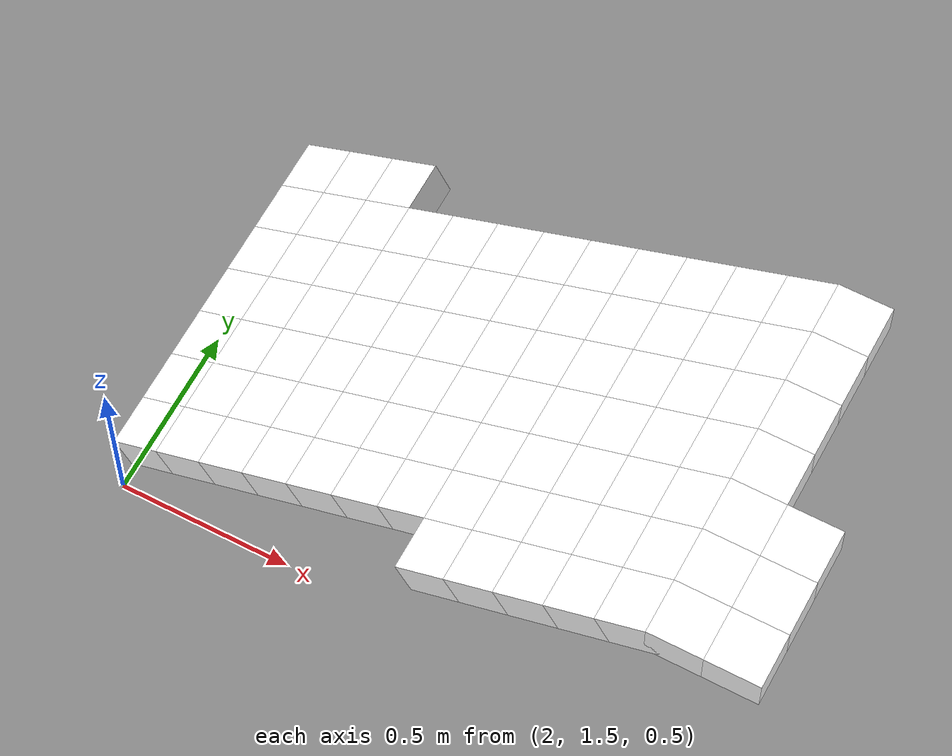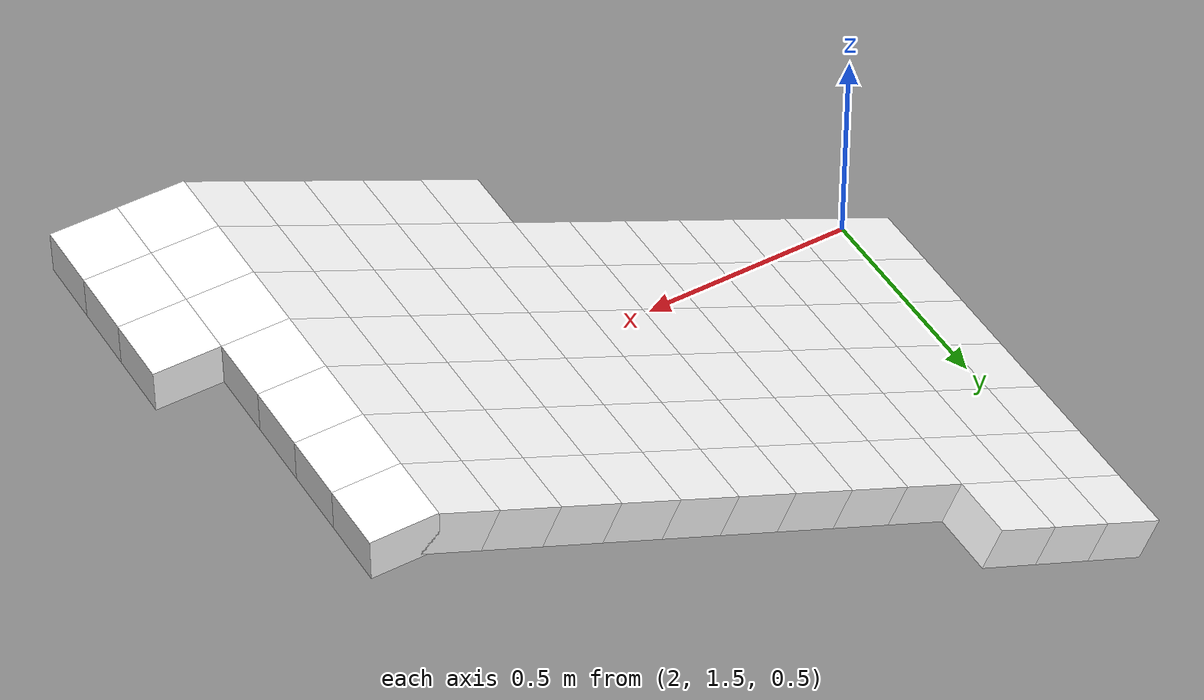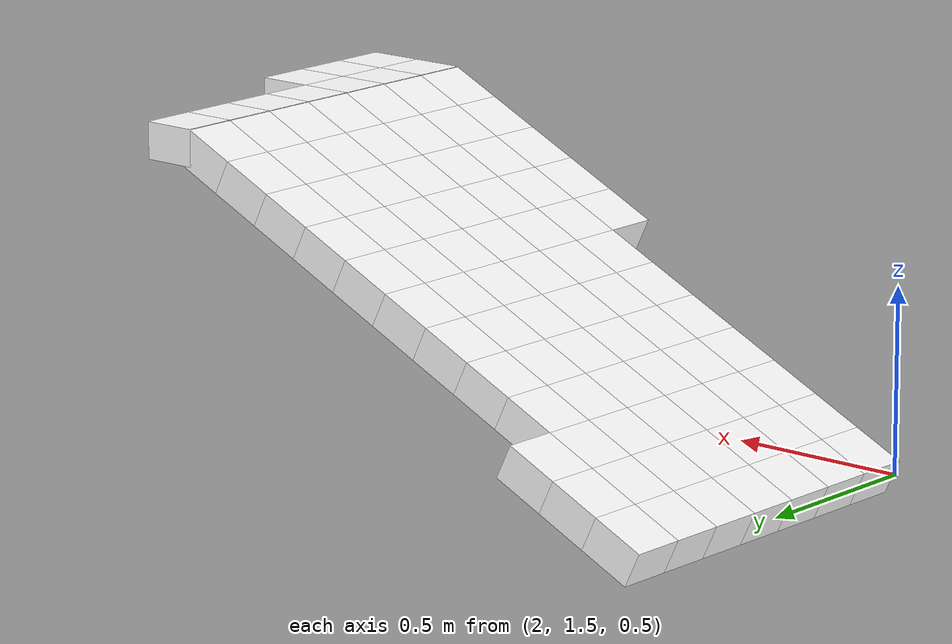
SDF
<sdf version="1.7">
 <world name="default">
  <include><uri>model://sun</uri></include>
  <model name="static_environment">
   <static>true</static>
   <link name="region_535">
    <pose>2.967153307946564 1.5 1.011209308380573 0.0 -0.45 0.0</pose>
    <collision name="region_535_collision">
     <geometry><box><size>0.15 0.15 0.1</size></box></geometry>
     <surface><friction><ode><mu>1.0</mu><mu2>1.0</mu2></ode></friction></surface>
    </collision>
    <visual name="region_535_visual">
     <geometry><box><size>0.15 0.15 0.1</size></box></geometry>
     <material><ambient>1.0 1.0 1.0 1.0</ambient><diffuse>1.0 1.0 1.0 1.0</diffuse></material>
    </visual>
   </link>
   <link name="region_536">
    <pose>3.102220373299466 1.5 1.0764541384972577 0.0 -0.45 0.0</pose>
    <collision name="region_536_collision">
     <geometry><box><size>0.15 0.15 0.1</size></box></geometry>
     <surface><friction><ode><mu>1.0</mu><mu2>1.0</mu2></ode></friction></surface>
    </collision>
    <visual name="region_536_visual">
     <geometry><box><size>0.15 0.15 0.1</size></box></geometry>
     <material><ambient>1.0 1.0 1.0 1.0</ambient><diffuse>1.0 1.0 1.0 1.0</diffuse></material>
    </visual>
   </link>
   <link name="region_537">
    <pose>3.237287438652367 1.5 1.1416989686139423 0.0 -0.45 0.0</pose>
    <collision name="region_537_collision">
     <geometry><box><size>0.15 0.15 0.1</size></box></geometry>
     <surface><friction><ode><mu>1.0</mu><mu2>1.0</mu2></ode></friction></surface>
    </collision>
    <visual name="region_537_visual">
     <geometry><box><size>0.15 0.15 0.1</size></box></geometry>
     <material><ambient>1.0 1.0 1.0 1.0</ambient><diffuse>1.0 1.0 1.0 1.0</diffuse></material>
    </visual>
   </link>
   <link name="region_538">
    <pose>3.372354504005269 1.5 1.2069437987306273 0.0 -0.45 0.0</pose>
    <collision name="region_538_collision">
     <geometry><box><size>0.15 0.15 0.1</size></box></geometry>
     <surface><friction><ode><mu>1.0</mu><mu2>1.0</mu2></ode></friction></surface>
    </collision>
    <visual name="region_538_visual">
     <geometry><box><size>0.15 0.15 0.1</size></box></geometry>
     <material><ambient>1.0 1.0 1.0 1.0</ambient><diffuse>1.0 1.0 1.0 1.0</diffuse></material>
    </visual>
   </link>
   <link name="region_539">
    <pose>3.507421569358171 1.5 1.2721886288473119 0.0 -0.45 0.0</pose>
    <collision name="region_539_collision">
     <geometry><box><size>0.15 0.15 0.1</size></box></geometry>
     <surface><friction><ode><mu>1.0</mu><mu2>1.0</mu2></ode></friction></surface>
    </collision>
    <visual name="region_539_visual">
     <geometry><box><size>0.15 0.15 0.1</size></box></geometry>
     <material><ambient>1.0 1.0 1.0 1.0</ambient><diffuse>1.0 1.0 1.0 1.0</diffuse></material>
    </visual>
   </link>
   <link name="region_548">
    <pose>2.0216838504762515 1.65 0.5544954975637805 0.0 -0.45 0.0</pose>
    <collision name="region_548_collision">
     <geometry><box><size>0.15 0.15 0.1</size></box></geometry>
     <surface><friction><ode><mu>1.0</mu><mu2>1.0</mu2></ode></friction></surface>
    </collision>
    <visual name="region_548_visual">
     <geometry><box><size>0.15 0.15 0.1</size></box></geometry>
     <material><ambient>1.0 1.0 1.0 1.0</ambient><diffuse>1.0 1.0 1.0 1.0</diffuse></material>
    </visual>
   </link>
   <link name="region_549">
    <pose>2.1567509158291527 1.65 0.619740327680465 0.0 -0.45 0.0</pose>
    <collision name="region_549_collision">
     <geometry><box><size>0.15 0.15 0.1</size></box></geometry>
     <surface><friction><ode><mu>1.0</mu><mu2>1.0</mu2></ode></friction></surface>
    </collision>
    <visual name="region_549_visual">
     <geometry><box><size>0.15 0.15 0.1</size></box></geometry>
     <material><ambient>1.0 1.0 1.0 1.0</ambient><diffuse>1.0 1.0 1.0 1.0</diffuse></material>
    </visual>
   </link>
   <link name="region_550">
    <pose>2.2918179811820547 1.65 0.6849851577971496 0.0 -0.45 0.0</pose>
    <collision name="region_550_collision">
     <geometry><box><size>0.15 0.15 0.1</size></box></geometry>
     <surface><friction><ode><mu>1.0</mu><mu2>1.0</mu2></ode></friction></surface>
    </collision>
    <visual name="region_550_visual">
     <geometry><box><size>0.15 0.15 0.1</size></box></geometry>
     <material><ambient>1.0 1.0 1.0 1.0</ambient><diffuse>1.0 1.0 1.0 1.0</diffuse></material>
    </visual>
   </link>
   <link name="region_551">
    <pose>2.426885046534956 1.65 0.7502299879138344 0.0 -0.45 0.0</pose>
    <collision name="region_551_collision">
     <geometry><box><size>0.15 0.15 0.1</size></box></geometry>
     <surface><friction><ode><mu>1.0</mu><mu2>1.0</mu2></ode></friction></surface>
    </collision>
    <visual name="region_551_visual">
     <geometry><box><size>0.15 0.15 0.1</size></box></geometry>
     <material><ambient>1.0 1.0 1.0 1.0</ambient><diffuse>1.0 1.0 1.0 1.0</diffuse></material>
    </visual>
   </link>
   <link name="region_552">
    <pose>2.5619521118878588 1.65 0.815474818030519 0.0 -0.45 0.0</pose>
    <collision name="region_552_collision">
     <geometry><box><size>0.15 0.15 0.1</size></box></geometry>
     <surface><friction><ode><mu>1.0</mu><mu2>1.0</mu2></ode></friction></surface>
    </collision>
    <visual name="region_552_visual">
     <geometry><box><size>0.15 0.15 0.1</size></box></geometry>
     <material><ambient>1.0 1.0 1.0 1.0</ambient><diffuse>1.0 1.0 1.0 1.0</diffuse></material>
    </visual>
   </link>
   <link name="region_553">
    <pose>2.69701917724076 1.65 0.8807196481472036 0.0 -0.45 0.0</pose>
    <collision name="region_553_collision">
     <geometry><box><size>0.15 0.15 0.1</size></box></geometry>
     <surface><friction><ode><mu>1.0</mu><mu2>1.0</mu2></ode></friction></surface>
    </collision>
    <visual name="region_553_visual">
     <geometry><box><size>0.15 0.15 0.1</size></box></geometry>
     <material><ambient>1.0 1.0 1.0 1.0</ambient><diffuse>1.0 1.0 1.0 1.0</diffuse></material>
    </visual>
   </link>
   <link name="region_554">
    <pose>2.832086242593662 1.65 0.9459644782638886 0.0 -0.45 0.0</pose>
    <collision name="region_554_collision">
     <geometry><box><size>0.15 0.15 0.1</size></box></geometry>
     <surface><friction><ode><mu>1.0</mu><mu2>1.0</mu2></ode></friction></surface>
    </collision>
    <visual name="region_554_visual">
     <geometry><box><size>0.15 0.15 0.1</size></box></geometry>
     <material><ambient>1.0 1.0 1.0 1.0</ambient><diffuse>1.0 1.0 1.0 1.0</diffuse></material>
    </visual>
   </link>
   <link name="region_555">
    <pose>2.967153307946564 1.65 1.011209308380573 0.0 -0.45 0.0</pose>
    <collision name="region_555_collision">
     <geometry><box><size>0.15 0.15 0.1</size></box></geometry>
     <surface><friction><ode><mu>1.0</mu><mu2>1.0</mu2></ode></friction></surface>
    </collision>
    <visual name="region_555_visual">
     <geometry><box><size>0.15 0.15 0.1</size></box></geometry>
     <material><ambient>1.0 1.0 1.0 1.0</ambient><diffuse>1.0 1.0 1.0 1.0</diffuse></material>
    </visual>
   </link>
   <link name="region_556">
    <pose>3.102220373299466 1.65 1.0764541384972577 0.0 -0.45 0.0</pose>
    <collision name="region_556_collision">
     <geometry><box><size>0.15 0.15 0.1</size></box></geometry>
     <surface><friction><ode><mu>1.0</mu><mu2>1.0</mu2></ode></friction></surface>
    </collision>
    <visual name="region_556_visual">
     <geometry><box><size>0.15 0.15 0.1</size></box></geometry>
     <material><ambient>1.0 1.0 1.0 1.0</ambient><diffuse>1.0 1.0 1.0 1.0</diffuse></material>
    </visual>
   </link>
   <link name="region_557">
    <pose>3.237287438652367 1.65 1.1416989686139423 0.0 -0.45 0.0</pose>
    <collision name="region_557_collision">
     <geometry><box><size>0.15 0.15 0.1</size></box></geometry>
     <surface><friction><ode><mu>1.0</mu><mu2>1.0</mu2></ode></friction></surface>
    </collision>
    <visual name="region_557_visual">
     <geometry><box><size>0.15 0.15 0.1</size></box></geometry>
     <material><ambient>1.0 1.0 1.0 1.0</ambient><diffuse>1.0 1.0 1.0 1.0</diffuse></material>
    </visual>
   </link>
   <link name="region_558">
    <pose>3.372354504005269 1.65 1.2069437987306273 0.0 -0.45 0.0</pose>
    <collision name="region_558_collision">
     <geometry><box><size>0.15 0.15 0.1</size></box></geometry>
     <surface><friction><ode><mu>1.0</mu><mu2>1.0</mu2></ode></friction></surface>
    </collision>
    <visual name="region_558_visual">
     <geometry><box><size>0.15 0.15 0.1</size></box></geometry>
     <material><ambient>1.0 1.0 1.0 1.0</ambient><diffuse>1.0 1.0 1.0 1.0</diffuse></material>
    </visual>
   </link>
   <link name="region_559">
    <pose>3.507421569358171 1.65 1.2721886288473119 0.0 -0.45 0.0</pose>
    <collision name="region_559_collision">
     <geometry><box><size>0.15 0.15 0.1</size></box></geometry>
     <surface><friction><ode><mu>1.0</mu><mu2>1.0</mu2></ode></friction></surface>
    </collision>
    <visual name="region_559_visual">
     <geometry><box><size>0.15 0.15 0.1</size></box></geometry>
     <material><ambient>1.0 1.0 1.0 1.0</ambient><diffuse>1.0 1.0 1.0 1.0</diffuse></material>
    </visual>
   </link>
   <link name="region_568">
    <pose>2.0216838504762515 1.7999999999999998 0.5544954975637805 0.0 -0.45 0.0</pose>
    <collision name="region_568_collision">
     <geometry><box><size>0.15 0.15 0.1</size></box></geometry>
     <surface><friction><ode><mu>1.0</mu><mu2>1.0</mu2></ode></friction></surface>
    </collision>
    <visual name="region_568_visual">
     <geometry><box><size>0.15 0.15 0.1</size></box></geometry>
     <material><ambient>1.0 1.0 1.0 1.0</ambient><diffuse>1.0 1.0 1.0 1.0</diffuse></material>
    </visual>
   </link>
   <link name="region_569">
    <pose>2.1567509158291527 1.7999999999999998 0.619740327680465 0.0 -0.45 0.0</pose>
    <collision name="region_569_collision">
     <geometry><box><size>0.15 0.15 0.1</size></box></geometry>
     <surface><friction><ode><mu>1.0</mu><mu2>1.0</mu2></ode></friction></surface>
    </collision>
    <visual name="region_569_visual">
     <geometry><box><size>0.15 0.15 0.1</size></box></geometry>
     <material><ambient>1.0 1.0 1.0 1.0</ambient><diffuse>1.0 1.0 1.0 1.0</diffuse></material>
    </visual>
   </link>
   <link name="region_570">
    <pose>2.2918179811820547 1.7999999999999998 0.6849851577971496 0.0 -0.45 0.0</pose>
    <collision name="region_570_collision">
     <geometry><box><size>0.15 0.15 0.1</size></box></geometry>
     <surface><friction><ode><mu>1.0</mu><mu2>1.0</mu2></ode></friction></surface>
    </collision>
    <visual name="region_570_visual">
     <geometry><box><size>0.15 0.15 0.1</size></box></geometry>
     <material><ambient>1.0 1.0 1.0 1.0</ambient><diffuse>1.0 1.0 1.0 1.0</diffuse></material>
    </visual>
   </link>
   <link name="region_571">
    <pose>2.426885046534956 1.7999999999999998 0.7502299879138344 0.0 -0.45 0.0</pose>
    <collision name="region_571_collision">
     <geometry><box><size>0.15 0.15 0.1</size></box></geometry>
     <surface><friction><ode><mu>1.0</mu><mu2>1.0</mu2></ode></friction></surface>
    </collision>
    <visual name="region_571_visual">
     <geometry><box><size>0.15 0.15 0.1</size></box></geometry>
     <material><ambient>1.0 1.0 1.0 1.0</ambient><diffuse>1.0 1.0 1.0 1.0</diffuse></material>
    </visual>
   </link>
   <link name="region_572">
    <pose>2.5619521118878588 1.7999999999999998 0.815474818030519 0.0 -0.45 0.0</pose>
    <collision name="region_572_collision">
     <geometry><box><size>0.15 0.15 0.1</size></box></geometry>
     <surface><friction><ode><mu>1.0</mu><mu2>1.0</mu2></ode></friction></surface>
    </collision>
    <visual name="region_572_visual">
     <geometry><box><size>0.15 0.15 0.1</size></box></geometry>
     <material><ambient>1.0 1.0 1.0 1.0</ambient><diffuse>1.0 1.0 1.0 1.0</diffuse></material>
    </visual>
   </link>
   <link name="region_573">
    <pose>2.69701917724076 1.7999999999999998 0.8807196481472036 0.0 -0.45 0.0</pose>
    <collision name="region_573_collision">
     <geometry><box><size>0.15 0.15 0.1</size></box></geometry>
     <surface><friction><ode><mu>1.0</mu><mu2>1.0</mu2></ode></friction></surface>
    </collision>
    <visual name="region_573_visual">
     <geometry><box><size>0.15 0.15 0.1</size></box></geometry>
     <material><ambient>1.0 1.0 1.0 1.0</ambient><diffuse>1.0 1.0 1.0 1.0</diffuse></material>
    </visual>
   </link>
   <link name="region_574">
    <pose>2.832086242593662 1.7999999999999998 0.9459644782638886 0.0 -0.45 0.0</pose>
    <collision name="region_574_collision">
     <geometry><box><size>0.15 0.15 0.1</size></box></geometry>
     <surface><friction><ode><mu>1.0</mu><mu2>1.0</mu2></ode></friction></surface>
    </collision>
    <visual name="region_574_visual">
     <geometry><box><size>0.15 0.15 0.1</size></box></geometry>
     <material><ambient>1.0 1.0 1.0 1.0</ambient><diffuse>1.0 1.0 1.0 1.0</diffuse></material>
    </visual>
   </link>
   <link name="region_575">
    <pose>2.967153307946564 1.7999999999999998 1.011209308380573 0.0 -0.45 0.0</pose>
    <collision name="region_575_collision">
     <geometry><box><size>0.15 0.15 0.1</size></box></geometry>
     <surface><friction><ode><mu>1.0</mu><mu2>1.0</mu2></ode></friction></surface>
    </collision>
    <visual name="region_575_visual">
     <geometry><box><size>0.15 0.15 0.1</size></box></geometry>
     <material><ambient>1.0 1.0 1.0 1.0</ambient><diffuse>1.0 1.0 1.0 1.0</diffuse></material>
    </visual>
   </link>
   <link name="region_576">
    <pose>3.102220373299466 1.7999999999999998 1.0764541384972577 0.0 -0.45 0.0</pose>
    <collision name="region_576_collision">
     <geometry><box><size>0.15 0.15 0.1</size></box></geometry>
     <surface><friction><ode><mu>1.0</mu><mu2>1.0</mu2></ode></friction></surface>
    </collision>
    <visual name="region_576_visual">
     <geometry><box><size>0.15 0.15 0.1</size></box></geometry>
     <material><ambient>1.0 1.0 1.0 1.0</ambient><diffuse>1.0 1.0 1.0 1.0</diffuse></material>
    </visual>
   </link>
   <link name="region_577">
    <pose>3.237287438652367 1.7999999999999998 1.1416989686139423 0.0 -0.45 0.0</pose>
    <collision name="region_577_collision">
     <geometry><box><size>0.15 0.15 0.1</size></box></geometry>
     <surface><friction><ode><mu>1.0</mu><mu2>1.0</mu2></ode></friction></surface>
    </collision>
    <visual name="region_577_visual">
     <geometry><box><size>0.15 0.15 0.1</size></box></geometry>
     <material><ambient>1.0 1.0 1.0 1.0</ambient><diffuse>1.0 1.0 1.0 1.0</diffuse></material>
    </visual>
   </link>
   <link name="region_578">
    <pose>3.372354504005269 1.7999999999999998 1.2069437987306273 0.0 -0.45 0.0</pose>
    <collision name="region_578_collision">
     <geometry><box><size>0.15 0.15 0.1</size></box></geometry>
     <surface><friction><ode><mu>1.0</mu><mu2>1.0</mu2></ode></friction></surface>
    </collision>
    <visual name="region_578_visual">
     <geometry><box><size>0.15 0.15 0.1</size></box></geometry>
     <material><ambient>1.0 1.0 1.0 1.0</ambient><diffuse>1.0 1.0 1.0 1.0</diffuse></material>
    </visual>
   </link>
   <link name="region_579">
    <pose>3.507421569358171 1.7999999999999998 1.2721886288473119 0.0 -0.45 0.0</pose>
    <collision name="region_579_collision">
     <geometry><box><size>0.15 0.15 0.1</size></box></geometry>
     <surface><friction><ode><mu>1.0</mu><mu2>1.0</mu2></ode></friction></surface>
    </collision>
    <visual name="region_579_visual">
     <geometry><box><size>0.15 0.15 0.1</size></box></geometry>
     <material><ambient>1.0 1.0 1.0 1.0</ambient><diffuse>1.0 1.0 1.0 1.0</diffuse></material>
    </visual>
   </link>
   <link name="region_588">
    <pose>2.0216838504762515 1.9499999999999997 0.5544954975637805 0.0 -0.45 0.0</pose>
    <collision name="region_588_collision">
     <geometry><box><size>0.15 0.15 0.1</size></box></geometry>
     <surface><friction><ode><mu>1.0</mu><mu2>1.0</mu2></ode></friction></surface>
    </collision>
    <visual name="region_588_visual">
     <geometry><box><size>0.15 0.15 0.1</size></box></geometry>
     <material><ambient>1.0 1.0 1.0 1.0</ambient><diffuse>1.0 1.0 1.0 1.0</diffuse></material>
    </visual>
   </link>
   <link name="region_589">
    <pose>2.1567509158291527 1.9499999999999997 0.619740327680465 0.0 -0.45 0.0</pose>
    <collision name="region_589_collision">
     <geometry><box><size>0.15 0.15 0.1</size></box></geometry>
     <surface><friction><ode><mu>1.0</mu><mu2>1.0</mu2></ode></friction></surface>
    </collision>
    <visual name="region_589_visual">
     <geometry><box><size>0.15 0.15 0.1</size></box></geometry>
     <material><ambient>1.0 1.0 1.0 1.0</ambient><diffuse>1.0 1.0 1.0 1.0</diffuse></material>
    </visual>
   </link>
   <link name="region_590">
    <pose>2.2918179811820547 1.9499999999999997 0.6849851577971496 0.0 -0.45 0.0</pose>
    <collision name="region_590_collision">
     <geometry><box><size>0.15 0.15 0.1</size></box></geometry>
     <surface><friction><ode><mu>1.0</mu><mu2>1.0</mu2></ode></friction></surface>
    </collision>
    <visual name="region_590_visual">
     <geometry><box><size>0.15 0.15 0.1</size></box></geometry>
     <material><ambient>1.0 1.0 1.0 1.0</ambient><diffuse>1.0 1.0 1.0 1.0</diffuse></material>
    </visual>
   </link>
   <link name="region_591">
    <pose>2.426885046534956 1.9499999999999997 0.7502299879138344 0.0 -0.45 0.0</pose>
    <collision name="region_591_collision">
     <geometry><box><size>0.15 0.15 0.1</size></box></geometry>
     <surface><friction><ode><mu>1.0</mu><mu2>1.0</mu2></ode></friction></surface>
    </collision>
    <visual name="region_591_visual">
     <geometry><box><size>0.15 0.15 0.1</size></box></geometry>
     <material><ambient>1.0 1.0 1.0 1.0</ambient><diffuse>1.0 1.0 1.0 1.0</diffuse></material>
    </visual>
   </link>
   <link name="region_592">
    <pose>2.5619521118878588 1.9499999999999997 0.815474818030519 0.0 -0.45 0.0</pose>
    <collision name="region_592_collision">
     <geometry><box><size>0.15 0.15 0.1</size></box></geometry>
     <surface><friction><ode><mu>1.0</mu><mu2>1.0</mu2></ode></friction></surface>
    </collision>
    <visual name="region_592_visual">
     <geometry><box><size>0.15 0.15 0.1</size></box></geometry>
     <material><ambient>1.0 1.0 1.0 1.0</ambient><diffuse>1.0 1.0 1.0 1.0</diffuse></material>
    </visual>
   </link>
   <link name="region_593">
    <pose>2.69701917724076 1.9499999999999997 0.8807196481472036 0.0 -0.45 0.0</pose>
    <collision name="region_593_collision">
     <geometry><box><size>0.15 0.15 0.1</size></box></geometry>
     <surface><friction><ode><mu>1.0</mu><mu2>1.0</mu2></ode></friction></surface>
    </collision>
    <visual name="region_593_visual">
     <geometry><box><size>0.15 0.15 0.1</size></box></geometry>
     <material><ambient>1.0 1.0 1.0 1.0</ambient><diffuse>1.0 1.0 1.0 1.0</diffuse></material>
    </visual>
   </link>
   <link name="region_594">
    <pose>2.832086242593662 1.9499999999999997 0.9459644782638886 0.0 -0.45 0.0</pose>
    <collision name="region_594_collision">
     <geometry><box><size>0.15 0.15 0.1</size></box></geometry>
     <surface><friction><ode><mu>1.0</mu><mu2>1.0</mu2></ode></friction></surface>
    </collision>
    <visual name="region_594_visual">
     <geometry><box><size>0.15 0.15 0.1</size></box></geometry>
     <material><ambient>1.0 1.0 1.0 1.0</ambient><diffuse>1.0 1.0 1.0 1.0</diffuse></material>
    </visual>
   </link>
   <link name="region_595">
    <pose>2.967153307946564 1.9499999999999997 1.011209308380573 0.0 -0.45 0.0</pose>
    <collision name="region_595_collision">
     <geometry><box><size>0.15 0.15 0.1</size></box></geometry>
     <surface><friction><ode><mu>1.0</mu><mu2>1.0</mu2></ode></friction></surface>
    </collision>
    <visual name="region_595_visual">
     <geometry><box><size>0.15 0.15 0.1</size></box></geometry>
     <material><ambient>1.0 1.0 1.0 1.0</ambient><diffuse>1.0 1.0 1.0 1.0</diffuse></material>
    </visual>
   </link>
   <link name="region_596">
    <pose>3.102220373299466 1.9499999999999997 1.0764541384972577 0.0 -0.45 0.0</pose>
    <collision name="region_596_collision">
     <geometry><box><size>0.15 0.15 0.1</size></box></geometry>
     <surface><friction><ode><mu>1.0</mu><mu2>1.0</mu2></ode></friction></surface>
    </collision>
    <visual name="region_596_visual">
     <geometry><box><size>0.15 0.15 0.1</size></box></geometry>
     <material><ambient>1.0 1.0 1.0 1.0</ambient><diffuse>1.0 1.0 1.0 1.0</diffuse></material>
    </visual>
   </link>
   <link name="region_597">
    <pose>3.237287438652367 1.9499999999999997 1.1416989686139423 0.0 -0.45 0.0</pose>
    <collision name="region_597_collision">
     <geometry><box><size>0.15 0.15 0.1</size></box></geometry>
     <surface><friction><ode><mu>1.0</mu><mu2>1.0</mu2></ode></friction></surface>
    </collision>
    <visual name="region_597_visual">
     <geometry><box><size>0.15 0.15 0.1</size></box></geometry>
     <material><ambient>1.0 1.0 1.0 1.0</ambient><diffuse>1.0 1.0 1.0 1.0</diffuse></material>
    </visual>
   </link>
   <link name="region_598">
    <pose>3.372354504005269 1.9499999999999997 1.2069437987306273 0.0 -0.45 0.0</pose>
    <collision name="region_598_collision">
     <geometry><box><size>0.15 0.15 0.1</size></box></geometry>
     <surface><friction><ode><mu>1.0</mu><mu2>1.0</mu2></ode></friction></surface>
    </collision>
    <visual name="region_598_visual">
     <geometry><box><size>0.15 0.15 0.1</size></box></geometry>
     <material><ambient>1.0 1.0 1.0 1.0</ambient><diffuse>1.0 1.0 1.0 1.0</diffuse></material>
    </visual>
   </link>
   <link name="region_599">
    <pose>3.507421569358171 1.9499999999999997 1.2721886288473119 0.0 -0.45 0.0</pose>
    <collision name="region_599_collision">
     <geometry><box><size>0.15 0.15 0.1</size></box></geometry>
     <surface><friction><ode><mu>1.0</mu><mu2>1.0</mu2></ode></friction></surface>
    </collision>
    <visual name="region_599_visual">
     <geometry><box><size>0.15 0.15 0.1</size></box></geometry>
     <material><ambient>1.0 1.0 1.0 1.0</ambient><diffuse>1.0 1.0 1.0 1.0</diffuse></material>
    </visual>
   </link>
   <link name="region_608">
    <pose>2.0216838504762515 2.0999999999999996 0.5544954975637805 0.0 -0.45 0.0</pose>
    <collision name="region_608_collision">
     <geometry><box><size>0.15 0.15 0.1</size></box></geometry>
     <surface><friction><ode><mu>1.0</mu><mu2>1.0</mu2></ode></friction></surface>
    </collision>
    <visual name="region_608_visual">
     <geometry><box><size>0.15 0.15 0.1</size></box></geometry>
     <material><ambient>1.0 1.0 1.0 1.0</ambient><diffuse>1.0 1.0 1.0 1.0</diffuse></material>
    </visual>
   </link>
   <link name="region_609">
    <pose>2.1567509158291527 2.0999999999999996 0.619740327680465 0.0 -0.45 0.0</pose>
    <collision name="region_609_collision">
     <geometry><box><size>0.15 0.15 0.1</size></box></geometry>
     <surface><friction><ode><mu>1.0</mu><mu2>1.0</mu2></ode></friction></surface>
    </collision>
    <visual name="region_609_visual">
     <geometry><box><size>0.15 0.15 0.1</size></box></geometry>
     <material><ambient>1.0 1.0 1.0 1.0</ambient><diffuse>1.0 1.0 1.0 1.0</diffuse></material>
    </visual>
   </link>
   <link name="region_610">
    <pose>2.2918179811820547 2.0999999999999996 0.6849851577971496 0.0 -0.45 0.0</pose>
    <collision name="region_610_collision">
     <geometry><box><size>0.15 0.15 0.1</size></box></geometry>
     <surface><friction><ode><mu>1.0</mu><mu2>1.0</mu2></ode></friction></surface>
    </collision>
    <visual name="region_610_visual">
     <geometry><box><size>0.15 0.15 0.1</size></box></geometry>
     <material><ambient>1.0 1.0 1.0 1.0</ambient><diffuse>1.0 1.0 1.0 1.0</diffuse></material>
    </visual>
   </link>
   <link name="region_611">
    <pose>2.426885046534956 2.0999999999999996 0.7502299879138344 0.0 -0.45 0.0</pose>
    <collision name="region_611_collision">
     <geometry><box><size>0.15 0.15 0.1</size></box></geometry>
     <surface><friction><ode><mu>1.0</mu><mu2>1.0</mu2></ode></friction></surface>
    </collision>
    <visual name="region_611_visual">
     <geometry><box><size>0.15 0.15 0.1</size></box></geometry>
     <material><ambient>1.0 1.0 1.0 1.0</ambient><diffuse>1.0 1.0 1.0 1.0</diffuse></material>
    </visual>
   </link>
   <link name="region_612">
    <pose>2.5619521118878588 2.0999999999999996 0.815474818030519 0.0 -0.45 0.0</pose>
    <collision name="region_612_collision">
     <geometry><box><size>0.15 0.15 0.1</size></box></geometry>
     <surface><friction><ode><mu>1.0</mu><mu2>1.0</mu2></ode></friction></surface>
    </collision>
    <visual name="region_612_visual">
     <geometry><box><size>0.15 0.15 0.1</size></box></geometry>
     <material><ambient>1.0 1.0 1.0 1.0</ambient><diffuse>1.0 1.0 1.0 1.0</diffuse></material>
    </visual>
   </link>
   <link name="region_613">
    <pose>2.69701917724076 2.0999999999999996 0.8807196481472036 0.0 -0.45 0.0</pose>
    <collision name="region_613_collision">
     <geometry><box><size>0.15 0.15 0.1</size></box></geometry>
     <surface><friction><ode><mu>1.0</mu><mu2>1.0</mu2></ode></friction></surface>
    </collision>
    <visual name="region_613_visual">
     <geometry><box><size>0.15 0.15 0.1</size></box></geometry>
     <material><ambient>1.0 1.0 1.0 1.0</ambient><diffuse>1.0 1.0 1.0 1.0</diffuse></material>
    </visual>
   </link>
   <link name="region_614">
    <pose>2.832086242593662 2.0999999999999996 0.9459644782638886 0.0 -0.45 0.0</pose>
    <collision name="region_614_collision">
     <geometry><box><size>0.15 0.15 0.1</size></box></geometry>
     <surface><friction><ode><mu>1.0</mu><mu2>1.0</mu2></ode></friction></surface>
    </collision>
    <visual name="region_614_visual">
     <geometry><box><size>0.15 0.15 0.1</size></box></geometry>
     <material><ambient>1.0 1.0 1.0 1.0</ambient><diffuse>1.0 1.0 1.0 1.0</diffuse></material>
    </visual>
   </link>
   <link name="region_615">
    <pose>2.967153307946564 2.0999999999999996 1.011209308380573 0.0 -0.45 0.0</pose>
    <collision name="region_615_collision">
     <geometry><box><size>0.15 0.15 0.1</size></box></geometry>
     <surface><friction><ode><mu>1.0</mu><mu2>1.0</mu2></ode></friction></surface>
    </collision>
    <visual name="region_615_visual">
     <geometry><box><size>0.15 0.15 0.1</size></box></geometry>
     <material><ambient>1.0 1.0 1.0 1.0</ambient><diffuse>1.0 1.0 1.0 1.0</diffuse></material>
    </visual>
   </link>
   <link name="region_616">
    <pose>3.102220373299466 2.0999999999999996 1.0764541384972577 0.0 -0.45 0.0</pose>
    <collision name="region_616_collision">
     <geometry><box><size>0.15 0.15 0.1</size></box></geometry>
     <surface><friction><ode><mu>1.0</mu><mu2>1.0</mu2></ode></friction></surface>
    </collision>
    <visual name="region_616_visual">
     <geometry><box><size>0.15 0.15 0.1</size></box></geometry>
     <material><ambient>1.0 1.0 1.0 1.0</ambient><diffuse>1.0 1.0 1.0 1.0</diffuse></material>
    </visual>
   </link>
   <link name="region_617">
    <pose>3.237287438652367 2.0999999999999996 1.1416989686139423 0.0 -0.45 0.0</pose>
    <collision name="region_617_collision">
     <geometry><box><size>0.15 0.15 0.1</size></box></geometry>
     <surface><friction><ode><mu>1.0</mu><mu2>1.0</mu2></ode></friction></surface>
    </collision>
    <visual name="region_617_visual">
     <geometry><box><size>0.15 0.15 0.1</size></box></geometry>
     <material><ambient>1.0 1.0 1.0 1.0</ambient><diffuse>1.0 1.0 1.0 1.0</diffuse></material>
    </visual>
   </link>
   <link name="region_618">
    <pose>3.372354504005269 2.0999999999999996 1.2069437987306273 0.0 -0.45 0.0</pose>
    <collision name="region_618_collision">
     <geometry><box><size>0.15 0.15 0.1</size></box></geometry>
     <surface><friction><ode><mu>1.0</mu><mu2>1.0</mu2></ode></friction></surface>
    </collision>
    <visual name="region_618_visual">
     <geometry><box><size>0.15 0.15 0.1</size></box></geometry>
     <material><ambient>1.0 1.0 1.0 1.0</ambient><diffuse>1.0 1.0 1.0 1.0</diffuse></material>
    </visual>
   </link>
   <link name="region_619">
    <pose>3.507421569358171 2.0999999999999996 1.2721886288473119 0.0 -0.45 0.0</pose>
    <collision name="region_619_collision">
     <geometry><box><size>0.15 0.15 0.1</size></box></geometry>
     <surface><friction><ode><mu>1.0</mu><mu2>1.0</mu2></ode></friction></surface>
    </collision>
    <visual name="region_619_visual">
     <geometry><box><size>0.15 0.15 0.1</size></box></geometry>
     <material><ambient>1.0 1.0 1.0 1.0</ambient><diffuse>1.0 1.0 1.0 1.0</diffuse></material>
    </visual>
   </link>
   <link name="region_628">
    <pose>2.0216838504762515 2.2499999999999996 0.5544954975637805 0.0 -0.45 0.0</pose>
    <collision name="region_628_collision">
     <geometry><box><size>0.15 0.15 0.1</size></box></geometry>
     <surface><friction><ode><mu>1.0</mu><mu2>1.0</mu2></ode></friction></surface>
    </collision>
    <visual name="region_628_visual">
     <geometry><box><size>0.15 0.15 0.1</size></box></geometry>
     <material><ambient>1.0 1.0 1.0 1.0</ambient><diffuse>1.0 1.0 1.0 1.0</diffuse></material>
    </visual>
   </link>
   <link name="region_629">
    <pose>2.1567509158291527 2.2499999999999996 0.619740327680465 0.0 -0.45 0.0</pose>
    <collision name="region_629_collision">
     <geometry><box><size>0.15 0.15 0.1</size></box></geometry>
     <surface><friction><ode><mu>1.0</mu><mu2>1.0</mu2></ode></friction></surface>
    </collision>
    <visual name="region_629_visual">
     <geometry><box><size>0.15 0.15 0.1</size></box></geometry>
     <material><ambient>1.0 1.0 1.0 1.0</ambient><diffuse>1.0 1.0 1.0 1.0</diffuse></material>
    </visual>
   </link>
   <link name="region_630">
    <pose>2.2918179811820547 2.2499999999999996 0.6849851577971496 0.0 -0.45 0.0</pose>
    <collision name="region_630_collision">
     <geometry><box><size>0.15 0.15 0.1</size></box></geometry>
     <surface><friction><ode><mu>1.0</mu><mu2>1.0</mu2></ode></friction></surface>
    </collision>
    <visual name="region_630_visual">
     <geometry><box><size>0.15 0.15 0.1</size></box></geometry>
     <material><ambient>1.0 1.0 1.0 1.0</ambient><diffuse>1.0 1.0 1.0 1.0</diffuse></material>
    </visual>
   </link>
   <link name="region_631">
    <pose>2.426885046534956 2.2499999999999996 0.7502299879138344 0.0 -0.45 0.0</pose>
    <collision name="region_631_collision">
     <geometry><box><size>0.15 0.15 0.1</size></box></geometry>
     <surface><friction><ode><mu>1.0</mu><mu2>1.0</mu2></ode></friction></surface>
    </collision>
    <visual name="region_631_visual">
     <geometry><box><size>0.15 0.15 0.1</size></box></geometry>
     <material><ambient>1.0 1.0 1.0 1.0</ambient><diffuse>1.0 1.0 1.0 1.0</diffuse></material>
    </visual>
   </link>
   <link name="region_632">
    <pose>2.5619521118878588 2.2499999999999996 0.815474818030519 0.0 -0.45 0.0</pose>
    <collision name="region_632_collision">
     <geometry><box><size>0.15 0.15 0.1</size></box></geometry>
     <surface><friction><ode><mu>1.0</mu><mu2>1.0</mu2></ode></friction></surface>
    </collision>
    <visual name="region_632_visual">
     <geometry><box><size>0.15 0.15 0.1</size></box></geometry>
     <material><ambient>1.0 1.0 1.0 1.0</ambient><diffuse>1.0 1.0 1.0 1.0</diffuse></material>
    </visual>
   </link>
   <link name="region_633">
    <pose>2.69701917724076 2.2499999999999996 0.8807196481472036 0.0 -0.45 0.0</pose>
    <collision name="region_633_collision">
     <geometry><box><size>0.15 0.15 0.1</size></box></geometry>
     <surface><friction><ode><mu>1.0</mu><mu2>1.0</mu2></ode></friction></surface>
    </collision>
    <visual name="region_633_visual">
     <geometry><box><size>0.15 0.15 0.1</size></box></geometry>
     <material><ambient>1.0 1.0 1.0 1.0</ambient><diffuse>1.0 1.0 1.0 1.0</diffuse></material>
    </visual>
   </link>
   <link name="region_634">
    <pose>2.832086242593662 2.2499999999999996 0.9459644782638886 0.0 -0.45 0.0</pose>
    <collision name="region_634_collision">
     <geometry><box><size>0.15 0.15 0.1</size></box></geometry>
     <surface><friction><ode><mu>1.0</mu><mu2>1.0</mu2></ode></friction></surface>
    </collision>
    <visual name="region_634_visual">
     <geometry><box><size>0.15 0.15 0.1</size></box></geometry>
     <material><ambient>1.0 1.0 1.0 1.0</ambient><diffuse>1.0 1.0 1.0 1.0</diffuse></material>
    </visual>
   </link>
   <link name="region_635">
    <pose>2.967153307946564 2.2499999999999996 1.011209308380573 0.0 -0.45 0.0</pose>
    <collision name="region_635_collision">
     <geometry><box><size>0.15 0.15 0.1</size></box></geometry>
     <surface><friction><ode><mu>1.0</mu><mu2>1.0</mu2></ode></friction></surface>
    </collision>
    <visual name="region_635_visual">
     <geometry><box><size>0.15 0.15 0.1</size></box></geometry>
     <material><ambient>1.0 1.0 1.0 1.0</ambient><diffuse>1.0 1.0 1.0 1.0</diffuse></material>
    </visual>
   </link>
   <link name="region_636">
    <pose>3.102220373299466 2.2499999999999996 1.0764541384972577 0.0 -0.45 0.0</pose>
    <collision name="region_636_collision">
     <geometry><box><size>0.15 0.15 0.1</size></box></geometry>
     <surface><friction><ode><mu>1.0</mu><mu2>1.0</mu2></ode></friction></surface>
    </collision>
    <visual name="region_636_visual">
     <geometry><box><size>0.15 0.15 0.1</size></box></geometry>
     <material><ambient>1.0 1.0 1.0 1.0</ambient><diffuse>1.0 1.0 1.0 1.0</diffuse></material>
    </visual>
   </link>
   <link name="region_637">
    <pose>3.237287438652367 2.2499999999999996 1.1416989686139423 0.0 -0.45 0.0</pose>
    <collision name="region_637_collision">
     <geometry><box><size>0.15 0.15 0.1</size></box></geometry>
     <surface><friction><ode><mu>1.0</mu><mu2>1.0</mu2></ode></friction></surface>
    </collision>
    <visual name="region_637_visual">
     <geometry><box><size>0.15 0.15 0.1</size></box></geometry>
     <material><ambient>1.0 1.0 1.0 1.0</ambient><diffuse>1.0 1.0 1.0 1.0</diffuse></material>
    </visual>
   </link>
   <link name="region_638">
    <pose>3.372354504005269 2.2499999999999996 1.2069437987306273 0.0 -0.45 0.0</pose>
    <collision name="region_638_collision">
     <geometry><box><size>0.15 0.15 0.1</size></box></geometry>
     <surface><friction><ode><mu>1.0</mu><mu2>1.0</mu2></ode></friction></surface>
    </collision>
    <visual name="region_638_visual">
     <geometry><box><size>0.15 0.15 0.1</size></box></geometry>
     <material><ambient>1.0 1.0 1.0 1.0</ambient><diffuse>1.0 1.0 1.0 1.0</diffuse></material>
    </visual>
   </link>
   <link name="region_639">
    <pose>3.507421569358171 2.2499999999999996 1.2721886288473119 0.0 -0.45 0.0</pose>
    <collision name="region_639_collision">
     <geometry><box><size>0.15 0.15 0.1</size></box></geometry>
     <surface><friction><ode><mu>1.0</mu><mu2>1.0</mu2></ode></friction></surface>
    </collision>
    <visual name="region_639_visual">
     <geometry><box><size>0.15 0.15 0.1</size></box></geometry>
     <material><ambient>1.0 1.0 1.0 1.0</ambient><diffuse>1.0 1.0 1.0 1.0</diffuse></material>
    </visual>
   </link>
   <link name="region_648">
    <pose>2.0216838504762515 2.3999999999999995 0.5544954975637805 0.0 -0.45 0.0</pose>
    <collision name="region_648_collision">
     <geometry><box><size>0.15 0.15 0.1</size></box></geometry>
     <surface><friction><ode><mu>1.0</mu><mu2>1.0</mu2></ode></friction></surface>
    </collision>
    <visual name="region_648_visual">
     <geometry><box><size>0.15 0.15 0.1</size></box></geometry>
     <material><ambient>1.0 1.0 1.0 1.0</ambient><diffuse>1.0 1.0 1.0 1.0</diffuse></material>
    </visual>
   </link>
   <link name="region_649">
    <pose>2.1567509158291527 2.3999999999999995 0.619740327680465 0.0 -0.45 0.0</pose>
    <collision name="region_649_collision">
     <geometry><box><size>0.15 0.15 0.1</size></box></geometry>
     <surface><friction><ode><mu>1.0</mu><mu2>1.0</mu2></ode></friction></surface>
    </collision>
    <visual name="region_649_visual">
     <geometry><box><size>0.15 0.15 0.1</size></box></geometry>
     <material><ambient>1.0 1.0 1.0 1.0</ambient><diffuse>1.0 1.0 1.0 1.0</diffuse></material>
    </visual>
   </link>
   <link name="region_650">
    <pose>2.2918179811820547 2.3999999999999995 0.6849851577971496 0.0 -0.45 0.0</pose>
    <collision name="region_650_collision">
     <geometry><box><size>0.15 0.15 0.1</size></box></geometry>
     <surface><friction><ode><mu>1.0</mu><mu2>1.0</mu2></ode></friction></surface>
    </collision>
    <visual name="region_650_visual">
     <geometry><box><size>0.15 0.15 0.1</size></box></geometry>
     <material><ambient>1.0 1.0 1.0 1.0</ambient><diffuse>1.0 1.0 1.0 1.0</diffuse></material>
    </visual>
   </link>
   <link name="region_651">
    <pose>2.426885046534956 2.3999999999999995 0.7502299879138344 0.0 -0.45 0.0</pose>
    <collision name="region_651_collision">
     <geometry><box><size>0.15 0.15 0.1</size></box></geometry>
     <surface><friction><ode><mu>1.0</mu><mu2>1.0</mu2></ode></friction></surface>
    </collision>
    <visual name="region_651_visual">
     <geometry><box><size>0.15 0.15 0.1</size></box></geometry>
     <material><ambient>1.0 1.0 1.0 1.0</ambient><diffuse>1.0 1.0 1.0 1.0</diffuse></material>
    </visual>
   </link>
   <link name="region_652">
    <pose>2.5619521118878588 2.3999999999999995 0.815474818030519 0.0 -0.45 0.0</pose>
    <collision name="region_652_collision">
     <geometry><box><size>0.15 0.15 0.1</size></box></geometry>
     <surface><friction><ode><mu>1.0</mu><mu2>1.0</mu2></ode></friction></surface>
    </collision>
    <visual name="region_652_visual">
     <geometry><box><size>0.15 0.15 0.1</size></box></geometry>
     <material><ambient>1.0 1.0 1.0 1.0</ambient><diffuse>1.0 1.0 1.0 1.0</diffuse></material>
    </visual>
   </link>
   <link name="region_653">
    <pose>2.69701917724076 2.3999999999999995 0.8807196481472036 0.0 -0.45 0.0</pose>
    <collision name="region_653_collision">
     <geometry><box><size>0.15 0.15 0.1</size></box></geometry>
     <surface><friction><ode><mu>1.0</mu><mu2>1.0</mu2></ode></friction></surface>
    </collision>
    <visual name="region_653_visual">
     <geometry><box><size>0.15 0.15 0.1</size></box></geometry>
     <material><ambient>1.0 1.0 1.0 1.0</ambient><diffuse>1.0 1.0 1.0 1.0</diffuse></material>
    </visual>
   </link>
   <link name="region_654">
    <pose>2.832086242593662 2.3999999999999995 0.9459644782638886 0.0 -0.45 0.0</pose>
    <collision name="region_654_collision">
     <geometry><box><size>0.15 0.15 0.1</size></box></geometry>
     <surface><friction><ode><mu>1.0</mu><mu2>1.0</mu2></ode></friction></surface>
    </collision>
    <visual name="region_654_visual">
     <geometry><box><size>0.15 0.15 0.1</size></box></geometry>
     <material><ambient>1.0 1.0 1.0 1.0</ambient><diffuse>1.0 1.0 1.0 1.0</diffuse></material>
    </visual>
   </link>
   <link name="region_655">
    <pose>2.967153307946564 2.3999999999999995 1.011209308380573 0.0 -0.45 0.0</pose>
    <collision name="region_655_collision">
     <geometry><box><size>0.15 0.15 0.1</size></box></geometry>
     <surface><friction><ode><mu>1.0</mu><mu2>1.0</mu2></ode></friction></surface>
    </collision>
    <visual name="region_655_visual">
     <geometry><box><size>0.15 0.15 0.1</size></box></geometry>
     <material><ambient>1.0 1.0 1.0 1.0</ambient><diffuse>1.0 1.0 1.0 1.0</diffuse></material>
    </visual>
   </link>
   <link name="region_656">
    <pose>3.102220373299466 2.3999999999999995 1.0764541384972577 0.0 -0.45 0.0</pose>
    <collision name="region_656_collision">
     <geometry><box><size>0.15 0.15 0.1</size></box></geometry>
     <surface><friction><ode><mu>1.0</mu><mu2>1.0</mu2></ode></friction></surface>
    </collision>
    <visual name="region_656_visual">
     <geometry><box><size>0.15 0.15 0.1</size></box></geometry>
     <material><ambient>1.0 1.0 1.0 1.0</ambient><diffuse>1.0 1.0 1.0 1.0</diffuse></material>
    </visual>
   </link>
   <link name="region_657">
    <pose>3.237287438652367 2.3999999999999995 1.1416989686139423 0.0 -0.45 0.0</pose>
    <collision name="region_657_collision">
     <geometry><box><size>0.15 0.15 0.1</size></box></geometry>
     <surface><friction><ode><mu>1.0</mu><mu2>1.0</mu2></ode></friction></surface>
    </collision>
    <visual name="region_657_visual">
     <geometry><box><size>0.15 0.15 0.1</size></box></geometry>
     <material><ambient>1.0 1.0 1.0 1.0</ambient><diffuse>1.0 1.0 1.0 1.0</diffuse></material>
    </visual>
   </link>
   <link name="region_658">
    <pose>3.372354504005269 2.3999999999999995 1.2069437987306273 0.0 -0.45 0.0</pose>
    <collision name="region_658_collision">
     <geometry><box><size>0.15 0.15 0.1</size></box></geometry>
     <surface><friction><ode><mu>1.0</mu><mu2>1.0</mu2></ode></friction></surface>
    </collision>
    <visual name="region_658_visual">
     <geometry><box><size>0.15 0.15 0.1</size></box></geometry>
     <material><ambient>1.0 1.0 1.0 1.0</ambient><diffuse>1.0 1.0 1.0 1.0</diffuse></material>
    </visual>
   </link>
   <link name="region_659">
    <pose>3.507421569358171 2.3999999999999995 1.2721886288473119 0.0 -0.45 0.0</pose>
    <collision name="region_659_collision">
     <geometry><box><size>0.15 0.15 0.1</size></box></geometry>
     <surface><friction><ode><mu>1.0</mu><mu2>1.0</mu2></ode></friction></surface>
    </collision>
    <visual name="region_659_visual">
     <geometry><box><size>0.15 0.15 0.1</size></box></geometry>
     <material><ambient>1.0 1.0 1.0 1.0</ambient><diffuse>1.0 1.0 1.0 1.0</diffuse></material>
    </visual>
   </link>
   <link name="region_668">
    <pose>2.0216838504762515 2.5499999999999994 0.5544954975637805 0.0 -0.45 0.0</pose>
    <collision name="region_668_collision">
     <geometry><box><size>0.15 0.15 0.1</size></box></geometry>
     <surface><friction><ode><mu>1.0</mu><mu2>1.0</mu2></ode></friction></surface>
    </collision>
    <visual name="region_668_visual">
     <geometry><box><size>0.15 0.15 0.1</size></box></geometry>
     <material><ambient>1.0 1.0 1.0 1.0</ambient><diffuse>1.0 1.0 1.0 1.0</diffuse></material>
    </visual>
   </link>
   <link name="region_669">
    <pose>2.1567509158291527 2.5499999999999994 0.619740327680465 0.0 -0.45 0.0</pose>
    <collision name="region_669_collision">
     <geometry><box><size>0.15 0.15 0.1</size></box></geometry>
     <surface><friction><ode><mu>1.0</mu><mu2>1.0</mu2></ode></friction></surface>
    </collision>
    <visual name="region_669_visual">
     <geometry><box><size>0.15 0.15 0.1</size></box></geometry>
     <material><ambient>1.0 1.0 1.0 1.0</ambient><diffuse>1.0 1.0 1.0 1.0</diffuse></material>
    </visual>
   </link>
   <link name="region_670">
    <pose>2.2918179811820547 2.5499999999999994 0.6849851577971496 0.0 -0.45 0.0</pose>
    <collision name="region_670_collision">
     <geometry><box><size>0.15 0.15 0.1</size></box></geometry>
     <surface><friction><ode><mu>1.0</mu><mu2>1.0</mu2></ode></friction></surface>
    </collision>
    <visual name="region_670_visual">
     <geometry><box><size>0.15 0.15 0.1</size></box></geometry>
     <material><ambient>1.0 1.0 1.0 1.0</ambient><diffuse>1.0 1.0 1.0 1.0</diffuse></material>
    </visual>
   </link>
   <link name="region_920">
    <pose>3.625 1.5 1.3 0.0 0.0 0.0</pose>
    <collision name="region_920_collision">
     <geometry><box><size>0.15 0.15 0.1</size></box></geometry>
     <surface><friction><ode><mu>1.0</mu><mu2>1.0</mu2></ode></friction></surface>
    </collision>
    <visual name="region_920_visual">
     <geometry><box><size>0.15 0.15 0.1</size></box></geometry>
     <material><ambient>1.0 1.0 1.0 1.0</ambient><diffuse>1.0 1.0 1.0 1.0</diffuse></material>
    </visual>
   </link>
   <link name="region_921">
    <pose>3.7750000000000004 1.5 1.3 0.0 0.0 0.0</pose>
    <collision name="region_921_collision">
     <geometry><box><size>0.15 0.15 0.1</size></box></geometry>
     <surface><friction><ode><mu>1.0</mu><mu2>1.0</mu2></ode></friction></surface>
    </collision>
    <visual name="region_921_visual">
     <geometry><box><size>0.15 0.15 0.1</size></box></geometry>
     <material><ambient>1.0 1.0 1.0 1.0</ambient><diffuse>1.0 1.0 1.0 1.0</diffuse></material>
    </visual>
   </link>
   <link name="region_940">
    <pose>3.625 1.65 1.3 0.0 0.0 0.0</pose>
    <collision name="region_940_collision">
     <geometry><box><size>0.15 0.15 0.1</size></box></geometry>
     <surface><friction><ode><mu>1.0</mu><mu2>1.0</mu2></ode></friction></surface>
    </collision>
    <visual name="region_940_visual">
     <geometry><box><size>0.15 0.15 0.1</size></box></geometry>
     <material><ambient>1.0 1.0 1.0 1.0</ambient><diffuse>1.0 1.0 1.0 1.0</diffuse></material>
    </visual>
   </link>
   <link name="region_941">
    <pose>3.7750000000000004 1.65 1.3 0.0 0.0 0.0</pose>
    <collision name="region_941_collision">
     <geometry><box><size>0.15 0.15 0.1</size></box></geometry>
     <surface><friction><ode><mu>1.0</mu><mu2>1.0</mu2></ode></friction></surface>
    </collision>
    <visual name="region_941_visual">
     <geometry><box><size>0.15 0.15 0.1</size></box></geometry>
     <material><ambient>1.0 1.0 1.0 1.0</ambient><diffuse>1.0 1.0 1.0 1.0</diffuse></material>
    </visual>
   </link>
   <link name="region_960">
    <pose>3.625 1.7999999999999998 1.3 0.0 0.0 0.0</pose>
    <collision name="region_960_collision">
     <geometry><box><size>0.15 0.15 0.1</size></box></geometry>
     <surface><friction><ode><mu>1.0</mu><mu2>1.0</mu2></ode></friction></surface>
    </collision>
    <visual name="region_960_visual">
     <geometry><box><size>0.15 0.15 0.1</size></box></geometry>
     <material><ambient>1.0 1.0 1.0 1.0</ambient><diffuse>1.0 1.0 1.0 1.0</diffuse></material>
    </visual>
   </link>
   <link name="region_961">
    <pose>3.7750000000000004 1.7999999999999998 1.3 0.0 0.0 0.0</pose>
    <collision name="region_961_collision">
     <geometry><box><size>0.15 0.15 0.1</size></box></geometry>
     <surface><friction><ode><mu>1.0</mu><mu2>1.0</mu2></ode></friction></surface>
    </collision>
    <visual name="region_961_visual">
     <geometry><box><size>0.15 0.15 0.1</size></box></geometry>
     <material><ambient>1.0 1.0 1.0 1.0</ambient><diffuse>1.0 1.0 1.0 1.0</diffuse></material>
    </visual>
   </link>
   <link name="region_980">
    <pose>3.625 1.9499999999999997 1.3 0.0 0.0 0.0</pose>
    <collision name="region_980_collision">
     <geometry><box><size>0.15 0.15 0.1</size></box></geometry>
     <surface><friction><ode><mu>1.0</mu><mu2>1.0</mu2></ode></friction></surface>
    </collision>
    <visual name="region_980_visual">
     <geometry><box><size>0.15 0.15 0.1</size></box></geometry>
     <material><ambient>1.0 1.0 1.0 1.0</ambient><diffuse>1.0 1.0 1.0 1.0</diffuse></material>
    </visual>
   </link>
   <link name="region_1000">
    <pose>3.625 2.0999999999999996 1.3 0.0 0.0 0.0</pose>
    <collision name="region_1000_collision">
     <geometry><box><size>0.15 0.15 0.1</size></box></geometry>
     <surface><friction><ode><mu>1.0</mu><mu2>1.0</mu2></ode></friction></surface>
    </collision>
    <visual name="region_1000_visual">
     <geometry><box><size>0.15 0.15 0.1</size></box></geometry>
     <material><ambient>1.0 1.0 1.0 1.0</ambient><diffuse>1.0 1.0 1.0 1.0</diffuse></material>
    </visual>
   </link>
   <link name="region_1020">
    <pose>3.625 2.2499999999999996 1.3 0.0 0.0 0.0</pose>
    <collision name="region_1020_collision">
     <geometry><box><size>0.15 0.15 0.1</size></box></geometry>
     <surface><friction><ode><mu>1.0</mu><mu2>1.0</mu2></ode></friction></surface>
    </collision>
    <visual name="region_1020_visual">
     <geometry><box><size>0.15 0.15 0.1</size></box></geometry>
     <material><ambient>1.0 1.0 1.0 1.0</ambient><diffuse>1.0 1.0 1.0 1.0</diffuse></material>
    </visual>
   </link>
   <link name="region_1040">
    <pose>3.625 2.3999999999999995 1.3 0.0 0.0 0.0</pose>
    <collision name="region_1040_collision">
     <geometry><box><size>0.15 0.15 0.1</size></box></geometry>
     <surface><friction><ode><mu>1.0</mu><mu2>1.0</mu2></ode></friction></surface>
    </collision>
    <visual name="region_1040_visual">
     <geometry><box><size>0.15 0.15 0.1</size></box></geometry>
     <material><ambient>1.0 1.0 1.0 1.0</ambient><diffuse>1.0 1.0 1.0 1.0</diffuse></material>
    </visual>
   </link>
  </model>
 </world>
</sdf>
